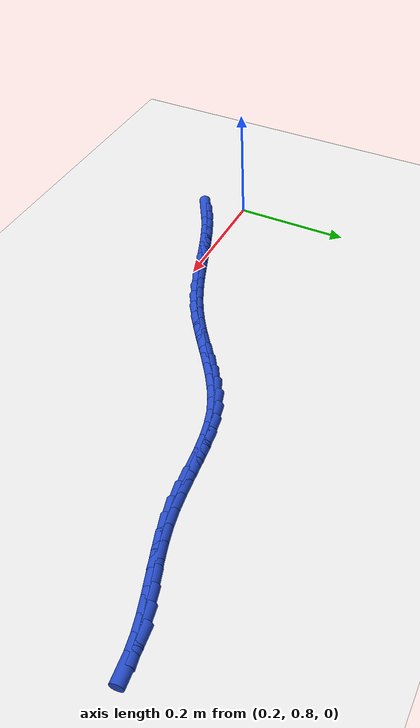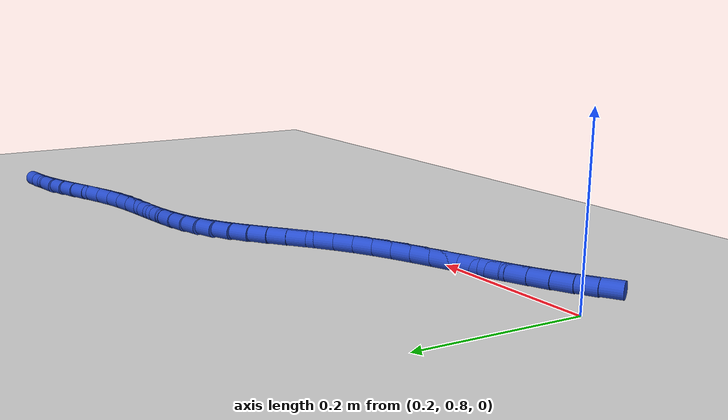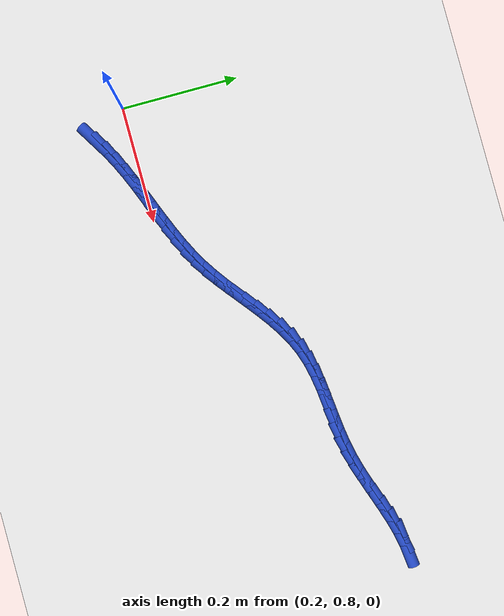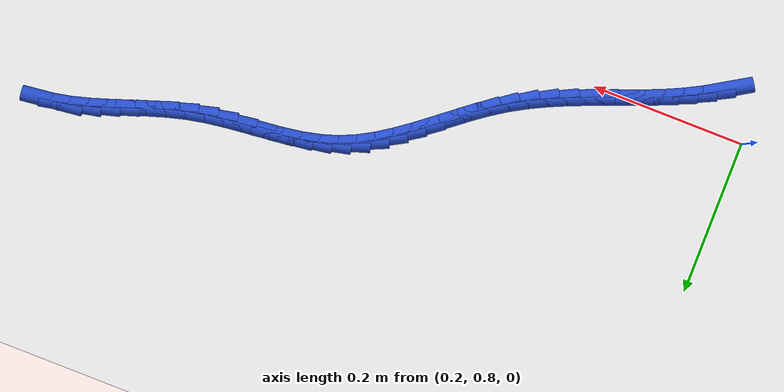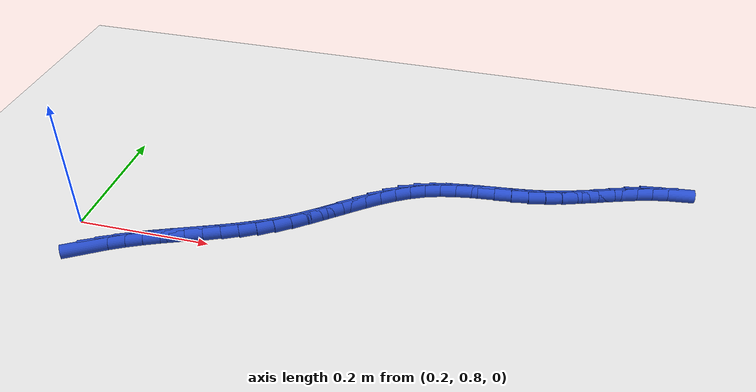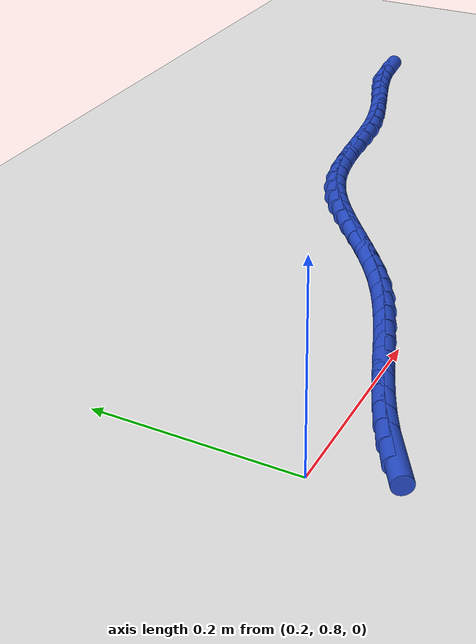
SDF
<sdf version="1.6">
 <world name="default">
  <model name="ground_plane">
   <static>1</static>
   <link name="link">
    <collision name="collision">
     <geometry><plane><normal>0 0 1</normal><size>100 100</size></plane></geometry>
     <surface><friction><ode><mu>100</mu><mu2>50</mu2></ode></friction></surface>
    </collision>
    <visual name="visual">
     <cast_shadows>0</cast_shadows>
     <geometry><plane><normal>0 0 1</normal><size>100 100</size></plane></geometry>
     <material>
      <script><uri>file://media/materials/scripts/gazebo.material</uri><name>Gazebo/WhiteGlow</name></script>
     </material>
    </visual>
   </link>
  </model>
  <model name="line">
   <link name="link_33">
    <pose>0.24837788039571584 0.7454788170744854 0.01 0 1.57 0.5475864809184215</pose>
    <collision name="collision">
     <geometry><cylinder><radius>0.01</radius><length>0.08</length></cylinder></geometry>
    </collision>
    <visual name="visual">
     <material>
      <script><name>Gazebo/Blue</name><uri>file://media/materials/scripts/gazebo.material</uri></script>
     </material>
     <geometry><cylinder><radius>0.01</radius><length>0.08</length></cylinder></geometry>
    </visual>
   </link>
   <link name="link_34">
    <pose>0.26870769072387285 0.7578757190500409 0.01 0 1.57 0.485228002487949</pose>
    <collision name="collision">
     <geometry><cylinder><radius>0.01</radius><length>0.08</length></cylinder></geometry>
    </collision>
    <visual name="visual">
     <material>
      <script><name>Gazebo/Blue</name><uri>file://media/materials/scripts/gazebo.material</uri></script>
     </material>
     <geometry><cylinder><radius>0.01</radius><length>0.08</length></cylinder></geometry>
    </visual>
   </link>
   <link name="link_35">
    <pose>0.2899323469080472 0.7690669287962737 0.01 0 1.57 0.4369631693404891</pose>
    <collision name="collision">
     <geometry><cylinder><radius>0.01</radius><length>0.08</length></cylinder></geometry>
    </collision>
    <visual name="visual">
     <material>
      <script><name>Gazebo/Blue</name><uri>file://media/materials/scripts/gazebo.material</uri></script>
     </material>
     <geometry><cylinder><radius>0.01</radius><length>0.08</length></cylinder></geometry>
    </visual>
   </link>
   <link name="link_36">
    <pose>0.31188103026068315 0.7793186301735731 0.01 0 1.57 0.4024378775957611</pose>
    <collision name="collision">
     <geometry><cylinder><radius>0.01</radius><length>0.08</length></cylinder></geometry>
    </collision>
    <visual name="visual">
     <material>
      <script><name>Gazebo/Blue</name><uri>file://media/materials/scripts/gazebo.material</uri></script>
     </material>
     <geometry><cylinder><radius>0.01</radius><length>0.08</length></cylinder></geometry>
    </visual>
   </link>
   <link name="link_37">
    <pose>0.33438292209422577 0.7888970070423291 0.01 0 1.57 0.38116632947380613</pose>
    <collision name="collision">
     <geometry><cylinder><radius>0.01</radius><length>0.08</length></cylinder></geometry>
    </collision>
    <visual name="visual">
     <material>
      <script><name>Gazebo/Blue</name><uri>file://media/materials/scripts/gazebo.material</uri></script>
     </material>
     <geometry><cylinder><radius>0.01</radius><length>0.08</length></cylinder></geometry>
    </visual>
   </link>
   <link name="link_38">
    <pose>0.3572672037211187 0.7980682432629304 0.01 0 1.57 0.372716286954041</pose>
    <collision name="collision">
     <geometry><cylinder><radius>0.01</radius><length>0.08</length></cylinder></geometry>
    </collision>
    <visual name="visual">
     <material>
      <script><name>Gazebo/Blue</name><uri>file://media/materials/scripts/gazebo.material</uri></script>
     </material>
     <geometry><cylinder><radius>0.01</radius><length>0.08</length></cylinder></geometry>
    </visual>
   </link>
   <link name="link_39">
    <pose>0.3803630564538072 0.8070985226957674 0.01 0 1.57 0.3768071415485865</pose>
    <collision name="collision">
     <geometry><cylinder><radius>0.01</radius><length>0.08</length></cylinder></geometry>
    </collision>
    <visual name="visual">
     <material>
      <script><name>Gazebo/Blue</name><uri>file://media/materials/scripts/gazebo.material</uri></script>
     </material>
     <geometry><cylinder><radius>0.01</radius><length>0.08</length></cylinder></geometry>
    </visual>
   </link>
   <link name="link_40">
    <pose>0.40349966160473516 0.8162540292012294 0.01 0 1.57 0.3933406382831516</pose>
    <collision name="collision">
     <geometry><cylinder><radius>0.01</radius><length>0.08</length></cylinder></geometry>
    </collision>
    <visual name="visual">
     <material>
      <script><name>Gazebo/Blue</name><uri>file://media/materials/scripts/gazebo.material</uri></script>
     </material>
     <geometry><cylinder><radius>0.01</radius><length>0.08</length></cylinder></geometry>
    </visual>
   </link>
   <link name="link_41">
    <pose>0.42650620048634746 0.825800946639706 0.01 0 1.57 0.422376521784005</pose>
    <collision name="collision">
     <geometry><cylinder><radius>0.01</radius><length>0.08</length></cylinder></geometry>
    </collision>
    <visual name="visual">
     <material>
      <script><name>Gazebo/Blue</name><uri>file://media/materials/scripts/gazebo.material</uri></script>
     </material>
     <geometry><cylinder><radius>0.01</radius><length>0.08</length></cylinder></geometry>
    </visual>
   </link>
   <link name="link_42">
    <pose>0.44921185441108835 0.8360054588715871 0.01 0 1.57 0.4640546780678825</pose>
    <collision name="collision">
     <geometry><cylinder><radius>0.01</radius><length>0.08</length></cylinder></geometry>
    </collision>
    <visual name="visual">
     <material>
      <script><name>Gazebo/Blue</name><uri>file://media/materials/scripts/gazebo.material</uri></script>
     </material>
     <geometry><cylinder><radius>0.01</radius><length>0.08</length></cylinder></geometry>
    </visual>
   </link>
   <link name="link_43">
    <pose>0.4714458046914022 0.8471337497572615 0.01 0 1.57 0.5184578456901792</pose>
    <collision name="collision">
     <geometry><cylinder><radius>0.01</radius><length>0.08</length></cylinder></geometry>
    </collision>
    <visual name="visual">
     <material>
      <script><name>Gazebo/Blue</name><uri>file://media/materials/scripts/gazebo.material</uri></script>
     </material>
     <geometry><cylinder><radius>0.01</radius><length>0.08</length></cylinder></geometry>
    </visual>
   </link>
   <link name="link_44">
    <pose>0.49303723263973376 0.8594520031571193 0.01 0 1.57 0.5814403331454062</pose>
    <collision name="collision">
     <geometry><cylinder><radius>0.01</radius><length>0.08</length></cylinder></geometry>
    </collision>
    <visual name="visual">
     <material>
      <script><name>Gazebo/Blue</name><uri>file://media/materials/scripts/gazebo.material</uri></script>
     </material>
     <geometry><cylinder><radius>0.01</radius><length>0.08</length></cylinder></geometry>
    </visual>
   </link>
   <link name="link_45">
    <pose>0.5138615754891978 0.8731383648626725 0.01 0 1.57 0.6314804484326801</pose>
    <collision name="collision">
     <geometry><cylinder><radius>0.01</radius><length>0.08</length></cylinder></geometry>
    </collision>
    <visual name="visual">
     <material>
      <script><name>Gazebo/Blue</name><uri>file://media/materials/scripts/gazebo.material</uri></script>
     </material>
     <geometry><cylinder><radius>0.01</radius><length>0.08</length></cylinder></geometry>
    </visual>
   </link>
   <link name="link_46">
    <pose>0.5340425556417864 0.8878984239314586 0.01 0 1.57 0.6618253283691095</pose>
    <collision name="collision">
     <geometry><cylinder><radius>0.01</radius><length>0.08</length></cylinder></geometry>
    </collision>
    <visual name="visual">
     <material>
      <script><name>Gazebo/Blue</name><uri>file://media/materials/scripts/gazebo.material</uri></script>
     </material>
     <geometry><cylinder><radius>0.01</radius><length>0.08</length></cylinder></geometry>
    </visual>
   </link>
   <link name="link_47">
    <pose>0.5537868447146543 0.9032798936591221 0.01 0 1.57 0.672832629722732</pose>
    <collision name="collision">
     <geometry><cylinder><radius>0.01</radius><length>0.08</length></cylinder></geometry>
    </collision>
    <visual name="visual">
     <material>
      <script><name>Gazebo/Blue</name><uri>file://media/materials/scripts/gazebo.material</uri></script>
     </material>
     <geometry><cylinder><radius>0.01</radius><length>0.08</length></cylinder></geometry>
    </visual>
   </link>
   <link name="link_48">
    <pose>0.573301172642326 0.9188303763469021 0.01 0 1.57 0.6644658982052908</pose>
    <collision name="collision">
     <geometry><cylinder><radius>0.01</radius><length>0.08</length></cylinder></geometry>
    </collision>
    <visual name="visual">
     <material>
      <script><name>Gazebo/Blue</name><uri>file://media/materials/scripts/gazebo.material</uri></script>
     </material>
     <geometry><cylinder><radius>0.01</radius><length>0.08</length></cylinder></geometry>
    </visual>
   </link>
   <link name="link_49">
    <pose>0.5927922693593244 0.934097474296035 0.01 0 1.57 0.6361538931488236</pose>
    <collision name="collision">
     <geometry><cylinder><radius>0.01</radius><length>0.08</length></cylinder></geometry>
    </collision>
    <visual name="visual">
     <material>
      <script><name>Gazebo/Blue</name><uri>file://media/materials/scripts/gazebo.material</uri></script>
     </material>
     <geometry><cylinder><radius>0.01</radius><length>0.08</length></cylinder></geometry>
    </visual>
   </link>
   <link name="link_50">
    <pose>0.6124668648001732 0.948628789807759 0.01 0 1.57 0.5868488147586071</pose>
    <collision name="collision">
     <geometry><cylinder><radius>0.01</radius><length>0.08</length></cylinder></geometry>
    </collision>
    <visual name="visual">
     <material>
      <script><name>Gazebo/Blue</name><uri>file://media/materials/scripts/gazebo.material</uri></script>
     </material>
     <geometry><cylinder><radius>0.01</radius><length>0.08</length></cylinder></geometry>
    </visual>
   </link>
   <link name="link_51">
    <pose>0.6325316888993958 0.9619719251833114 0.01 0 1.57 0.5153370140667631</pose>
    <collision name="collision">
     <geometry><cylinder><radius>0.01</radius><length>0.08</length></cylinder></geometry>
    </collision>
    <visual name="visual">
     <material>
      <script><name>Gazebo/Blue</name><uri>file://media/materials/scripts/gazebo.material</uri></script>
     </material>
     <geometry><cylinder><radius>0.01</radius><length>0.08</length></cylinder></geometry>
    </visual>
   </link>
   <link name="link_52">
    <pose>0.6531934715915163 0.9736744827239309 0.01 0 1.57 0.42091982767863056</pose>
    <collision name="collision">
     <geometry><cylinder><radius>0.01</radius><length>0.08</length></cylinder></geometry>
    </collision>
    <visual name="visual">
     <material>
      <script><name>Gazebo/Blue</name><uri>file://media/materials/scripts/gazebo.material</uri></script>
     </material>
     <geometry><cylinder><radius>0.01</radius><length>0.08</length></cylinder></geometry>
    </visual>
   </link>
   <link name="link_53">
    <pose>0.6746589428110578 0.983284064730854 0.01 0 1.57 0.3113556151825807</pose>
    <collision name="collision">
     <geometry><cylinder><radius>0.01</radius><length>0.08</length></cylinder></geometry>
    </collision>
    <visual name="visual">
     <material>
      <script><name>Gazebo/Blue</name><uri>file://media/materials/scripts/gazebo.material</uri></script>
     </material>
     <geometry><cylinder><radius>0.01</radius><length>0.08</length></cylinder></geometry>
    </visual>
   </link>
   <link name="link_54">
    <pose>0.6970769392252876 0.9904986886721905 0.01 0 1.57 0.21963390347332945</pose>
    <collision name="collision">
     <geometry><cylinder><radius>0.01</radius><length>0.08</length></cylinder></geometry>
    </collision>
    <visual name="visual">
     <material>
      <script><name>Gazebo/Blue</name><uri>file://media/materials/scripts/gazebo.material</uri></script>
     </material>
     <geometry><cylinder><radius>0.01</radius><length>0.08</length></cylinder></geometry>
    </visual>
   </link>
   <link name="link_55">
    <pose>0.7203366155492823 0.9956910636688654 0.01 0 1.57 0.15478383223184994</pose>
    <collision name="collision">
     <geometry><cylinder><radius>0.01</radius><length>0.08</length></cylinder></geometry>
    </collision>
    <visual name="visual">
     <material>
      <script><name>Gazebo/Blue</name><uri>file://media/materials/scripts/gazebo.material</uri></script>
     </material>
     <geometry><cylinder><radius>0.01</radius><length>0.08</length></cylinder></geometry>
    </visual>
   </link>
   <link name="link_56">
    <pose>0.7442543462269555 0.9994229926198983 0.01 0 1.57 0.11563778552036559</pose>
    <collision name="collision">
     <geometry><cylinder><radius>0.01</radius><length>0.08</length></cylinder></geometry>
    </collision>
    <visual name="visual">
     <material>
      <script><name>Gazebo/Blue</name><uri>file://media/materials/scripts/gazebo.material</uri></script>
     </material>
     <geometry><cylinder><radius>0.01</radius><length>0.08</length></cylinder></geometry>
    </visual>
   </link>
   <link name="link_57">
    <pose>0.7686465020883363 1.0022562878137133 0.01 0 1.57 0.1007988405325589</pose>
    <collision name="collision">
     <geometry><cylinder><radius>0.01</radius><length>0.08</length></cylinder></geometry>
    </collision>
    <visual name="visual">
     <material>
      <script><name>Gazebo/Blue</name><uri>file://media/materials/scripts/gazebo.material</uri></script>
     </material>
     <geometry><cylinder><radius>0.01</radius><length>0.08</length></cylinder></geometry>
    </visual>
   </link>
   <link name="link_58">
    <pose>0.7933294539634524 1.0047527615387333 0.01 0 1.57 0.1093423634695897</pose>
    <collision name="collision">
     <geometry><cylinder><radius>0.01</radius><length>0.08</length></cylinder></geometry>
    </collision>
    <visual name="visual">
     <material>
      <script><name>Gazebo/Blue</name><uri>file://media/materials/scripts/gazebo.material</uri></script>
     </material>
     <geometry><cylinder><radius>0.01</radius><length>0.08</length></cylinder></geometry>
    </visual>
   </link>
   <link name="link_59">
    <pose>0.8181195726823325 1.0074742260833824 0.01 0 1.57 0.14101445191665365</pose>
    <collision name="collision">
     <geometry><cylinder><radius>0.01</radius><length>0.08</length></cylinder></geometry>
    </collision>
    <visual name="visual">
     <material>
      <script><name>Gazebo/Blue</name><uri>file://media/materials/scripts/gazebo.material</uri></script>
     </material>
     <geometry><cylinder><radius>0.01</radius><length>0.08</length></cylinder></geometry>
    </visual>
   </link>
   <link name="link_60">
    <pose>0.8428332290750047 1.0109824937360838 0.01 0 1.57 0.19597438036675618</pose>
    <collision name="collision">
     <geometry><cylinder><radius>0.01</radius><length>0.08</length></cylinder></geometry>
    </collision>
    <visual name="visual">
     <material>
      <script><name>Gazebo/Blue</name><uri>file://media/materials/scripts/gazebo.material</uri></script>
     </material>
     <geometry><cylinder><radius>0.01</radius><length>0.08</length></cylinder></geometry>
    </visual>
   </link>
   <link name="link_61">
    <pose>0.8672872637894665 1.015837167209766 0.01 0 1.57 0.2606775421399852</pose>
    <collision name="collision">
     <geometry><cylinder><radius>0.01</radius><length>0.08</length></cylinder></geometry>
    </collision>
    <visual name="visual">
     <material>
      <script><name>Gazebo/Blue</name><uri>file://media/materials/scripts/gazebo.material</uri></script>
     </material>
     <geometry><cylinder><radius>0.01</radius><length>0.08</length></cylinder></geometry>
    </visual>
   </link>
   <link name="link_62">
    <pose>0.8913700995711199 1.0222611953243048 0.01 0 1.57 0.3067265759131802</pose>
    <collision name="collision">
     <geometry><cylinder><radius>0.01</radius><length>0.08</length></cylinder></geometry>
    </collision>
    <visual name="visual">
     <material>
      <script><name>Gazebo/Blue</name><uri>file://media/materials/scripts/gazebo.material</uri></script>
     </material>
     <geometry><cylinder><radius>0.01</radius><length>0.08</length></cylinder></geometry>
    </visual>
   </link>
   <link name="link_63">
    <pose>0.9151179098923152 1.0297826484420853 0.01 0 1.57 0.3308754575620428</pose>
    <collision name="collision">
     <geometry><cylinder><radius>0.01</radius><length>0.08</length></cylinder></geometry>
    </collision>
    <visual name="visual">
     <material>
      <script><name>Gazebo/Blue</name><uri>file://media/materials/scripts/gazebo.material</uri></script>
     </material>
     <geometry><cylinder><radius>0.01</radius><length>0.08</length></cylinder></geometry>
    </visual>
   </link>
   <link name="link_64">
    <pose>0.9385851288622677 1.0378437163113008 0.01 0 1.57 0.33316320500439944</pose>
    <collision name="collision">
     <geometry><cylinder><radius>0.01</radius><length>0.08</length></cylinder></geometry>
    </collision>
    <visual name="visual">
     <material>
      <script><name>Gazebo/Blue</name><uri>file://media/materials/scripts/gazebo.material</uri></script>
     </material>
     <geometry><cylinder><radius>0.01</radius><length>0.08</length></cylinder></geometry>
    </visual>
   </link>
   <link name="link_65">
    <pose>0.9618261905901928 1.0458865886801443 0.01 0 1.57 0.313029030890931</pose>
    <collision name="collision">
     <geometry><cylinder><radius>0.01</radius><length>0.08</length></cylinder></geometry>
    </collision>
    <visual name="visual">
     <material>
      <script><name>Gazebo/Blue</name><uri>file://media/materials/scripts/gazebo.material</uri></script>
     </material>
     <geometry><cylinder><radius>0.01</radius><length>0.08</length></cylinder></geometry>
    </visual>
   </link>
   <link name="link_66">
    <pose>0.9848955291853061 1.0533534552968096 0.01 0 1.57 0.26922622897435544</pose>
    <collision name="collision">
     <geometry><cylinder><radius>0.01</radius><length>0.08</length></cylinder></geometry>
    </collision>
    <visual name="visual">
     <material>
      <script><name>Gazebo/Blue</name><uri>file://media/materials/scripts/gazebo.material</uri></script>
     </material>
     <geometry><cylinder><radius>0.01</radius><length>0.08</length></cylinder></geometry>
    </visual>
   </link>
   <link name="link_67">
    <pose>1.0078475787568224 1.0596865059094895 0.01 0 1.57 0.2001209866895441</pose>
    <collision name="collision">
     <geometry><cylinder><radius>0.01</radius><length>0.08</length></cylinder></geometry>
    </collision>
    <visual name="visual">
     <material>
      <script><name>Gazebo/Blue</name><uri>file://media/materials/scripts/gazebo.material</uri></script>
     </material>
     <geometry><cylinder><radius>0.01</radius><length>0.08</length></cylinder></geometry>
    </visual>
   </link>
   <link name="link_68">
    <pose>1.0307367813749222 1.0643292601383858 0.01 0 1.57 0.11470862202589946</pose>
    <collision name="collision">
     <geometry><cylinder><radius>0.01</radius><length>0.08</length></cylinder></geometry>
    </collision>
    <visual name="visual">
     <material>
      <script><name>Gazebo/Blue</name><uri>file://media/materials/scripts/gazebo.material</uri></script>
     </material>
     <geometry><cylinder><radius>0.01</radius><length>0.08</length></cylinder></geometry>
    </visual>
   </link>
  </model>
 </world>
</sdf>
